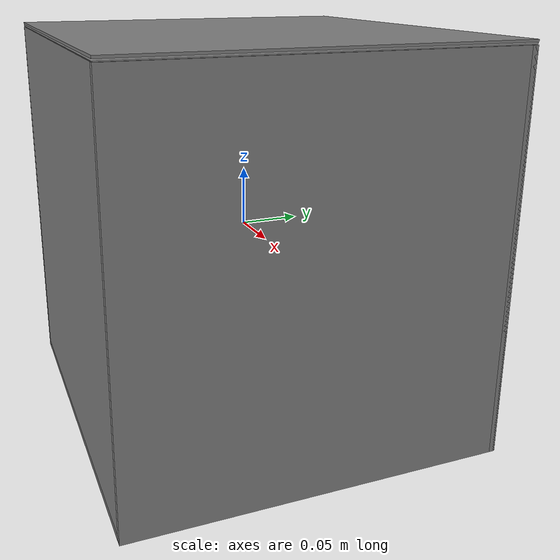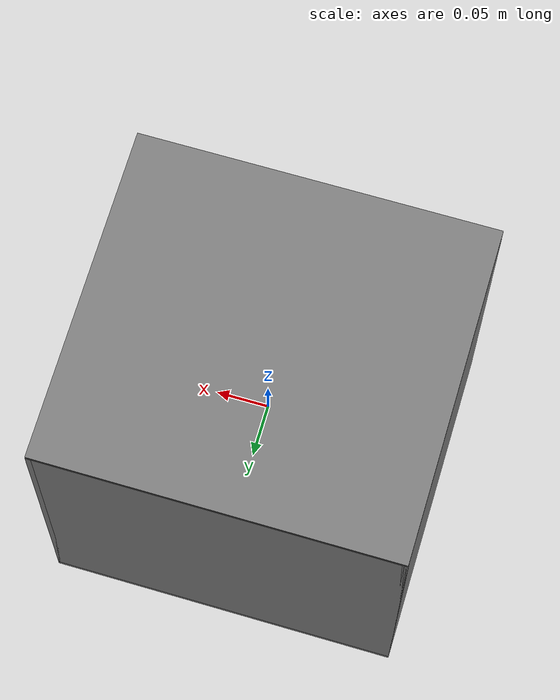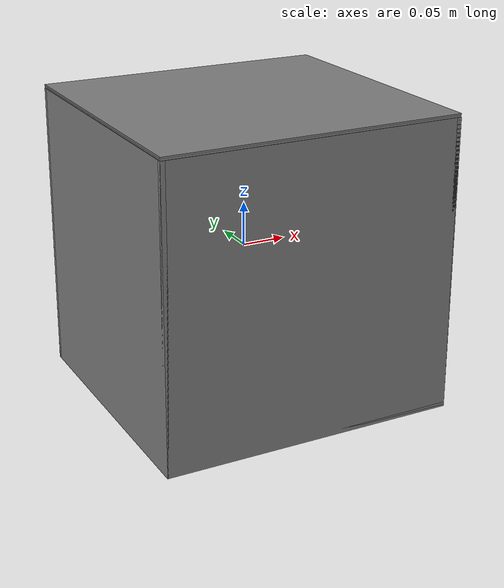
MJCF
<mujoco model="box">
    <compiler angle="radian" meshdir="box/stl/" autolimits="true" />
    <default />
    <asset>
        <mesh name="BoxFlapSide1" file="BoxFlapSide1.stl" />
        <mesh name="BoxFlapSide2" file="BoxFlapSide2.stl" />
    </asset>
    <worldbody>
        <body name="box">
            <freejoint />
            <inertial pos="0 0 0" mass="10.0" diaginertia="1 1 1"/>
            <geom size="0.17 0.16 0.0025" pos="0 0 -0.1675" type="box" condim="4" friction="2 0.05 0.01" />
            <geom size="0.002578 0.16 0.1675" pos="0.167578 0 -0.0025" type="box" />
            <geom size="0.002578 0.16 0.1675" pos="-0.167578 0 -0.0025" type="box" />
            <geom size="0.170156 0.0025 0.1675" pos="0 0.1575 -0.0025" type="box" />
            <geom size="0.170156 0.0025 0.1675" pos="0 -0.1575 -0.0025" type="box" />
            <body name="box_flap_side_1" pos="-0.17 0 0.168" gravcomp="0">
                <joint name="box_flap_side_1_joint" axis="0 -1 0" damping="0.1" range="0.02 4.71238898038469" />
                <geom type="mesh" mesh="BoxFlapSide1" />
            </body>
            <body name="box_flap_side_2" pos="0.17 0 0.166" gravcomp="0">
                <joint name="box_flap_side_2_joint" axis="0 1 0" damping="0.1" range="0.01 4.71238898038469" />
                <geom type="mesh" mesh="BoxFlapSide2" />
            </body>
        </body>
    </worldbody>
    <equality />
    <contact />
</mujoco>
